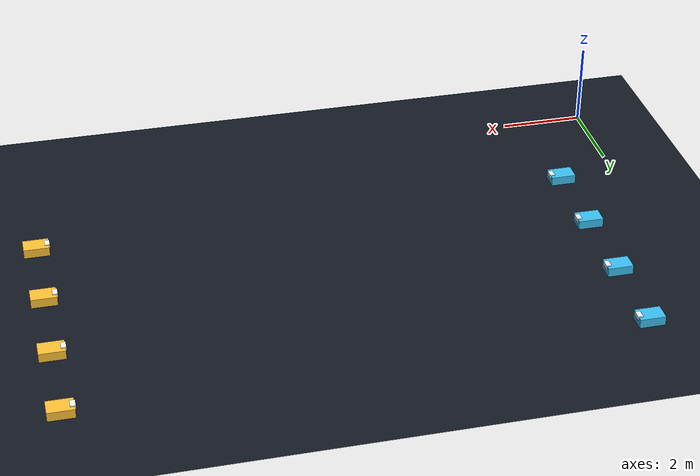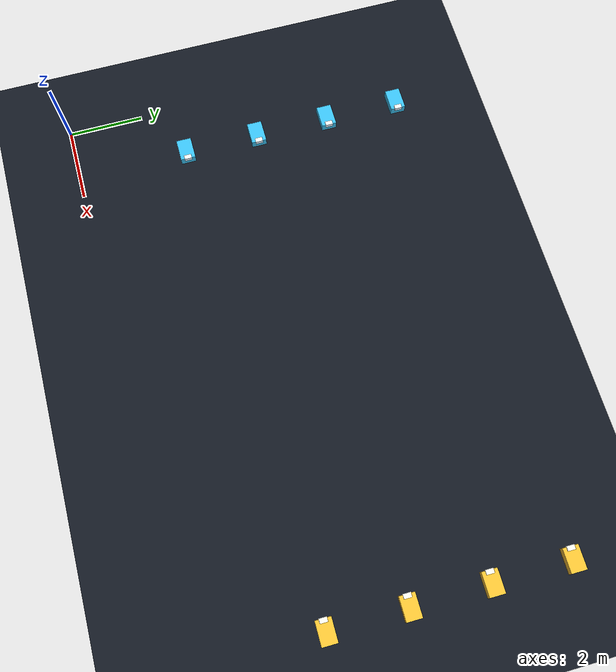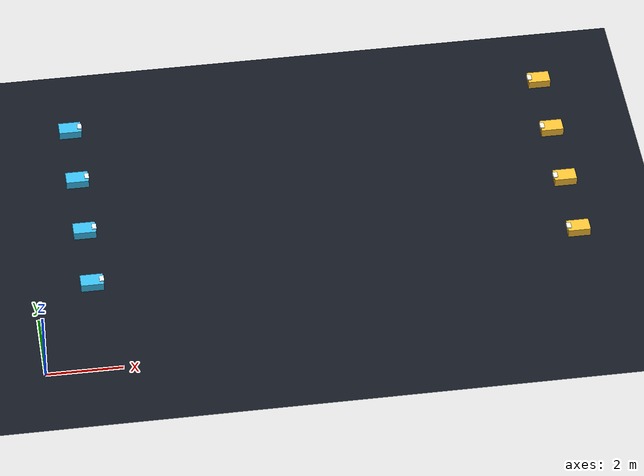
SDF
<?xml version="1.0" ?>
<sdf version="1.8">
  <world name="orca_demo">
    <physics name="1ms" type="ignored"><max_step_size>0.001</max_step_size><real_time_factor>1.0</real_time_factor></physics>
    <plugin filename="gz-sim-physics-system" name="gz::sim::systems::Physics"/>
    <plugin filename="gz-sim-user-commands-system" name="gz::sim::systems::UserCommands"/>
    <plugin filename="gz-sim-scene-broadcaster-system" name="gz::sim::systems::SceneBroadcaster"/>
    <plugin filename="gz-sim-sensors-system" name="gz::sim::systems::Sensors"><render_engine>ogre2</render_engine><background_color>0.043 0.055 0.078 1</background_color></plugin>

    <scene><ambient>0.5 0.5 0.55 1</ambient><background>0.043 0.055 0.078 1</background><grid>false</grid><shadows>true</shadows></scene>
    <light type="directional" name="sun"><cast_shadows>true</cast_shadows><pose>0 0 10 0 0 0</pose>
      <diffuse>0.9 0.9 0.9 1</diffuse><specular>0.25 0.25 0.25 1</specular><direction>-0.4 0.3 -0.9</direction></light>

    <model name="ground_plane"><static>true</static><link name="link">
      <collision name="c"><geometry><plane><normal>0 0 1</normal><size>60 60</size></plane></geometry></collision>
      <visual name="v"><geometry><plane><normal>0 0 1</normal><size>60 60</size></plane></geometry>
        <material><ambient>0.05 0.07 0.10 1</ambient><diffuse>0.07 0.09 0.13 1</diffuse></material></visual>
    </link></model>

    <model name="r1">
      <pose>1.5 3.0 0.1 0 0 0.0</pose>
      <link name="base">
        <inertial><mass>2.0</mass><inertia><ixx>0.05</ixx><iyy>0.05</iyy><izz>0.08</izz><ixy>0</ixy><ixz>0</ixz><iyz>0</iyz></inertia></inertial>
        <collision name="c"><pose>0 0 0.12 0 0 0</pose><geometry><box><size>0.6 0.4 0.22</size></box></geometry></collision>
        <visual name="v"><pose>0 0 0.12 0 0 0</pose><geometry><box><size>0.6 0.4 0.22</size></box></geometry>
          <material><ambient>0.13 0.55 0.77 1</ambient><diffuse>0.22 0.74 0.93 1</diffuse><specular>0.3 0.3 0.3 1</specular></material></visual>
        <visual name="nose"><pose>0.26 0 0.2 0 0 0</pose><geometry><box><size>0.12 0.2 0.1</size></box></geometry>
          <material><ambient>0.9 0.95 1 1</ambient><diffuse>0.9 0.95 1 1</diffuse></material></visual>
      </link>
      <plugin filename="gz-sim-velocity-control-system" name="gz::sim::systems::VelocityControl">
        <topic>/model/r1/cmd_vel</topic></plugin>
      <plugin filename="gz-sim-pose-publisher-system" name="gz::sim::systems::PosePublisher">
        <publish_link_pose>false</publish_link_pose><publish_model_pose>true</publish_model_pose>
        <use_pose_vector_msg>false</use_pose_vector_msg><static_publisher>false</static_publisher>
        <update_frequency>30</update_frequency></plugin>
    </model>
    <model name="r2">
      <pose>1.5 5.0 0.1 0 0 0.0</pose>
      <link name="base">
        <inertial><mass>2.0</mass><inertia><ixx>0.05</ixx><iyy>0.05</iyy><izz>0.08</izz><ixy>0</ixy><ixz>0</ixz><iyz>0</iyz></inertia></inertial>
        <collision name="c"><pose>0 0 0.12 0 0 0</pose><geometry><box><size>0.6 0.4 0.22</size></box></geometry></collision>
        <visual name="v"><pose>0 0 0.12 0 0 0</pose><geometry><box><size>0.6 0.4 0.22</size></box></geometry>
          <material><ambient>0.13 0.55 0.77 1</ambient><diffuse>0.22 0.74 0.93 1</diffuse><specular>0.3 0.3 0.3 1</specular></material></visual>
        <visual name="nose"><pose>0.26 0 0.2 0 0 0</pose><geometry><box><size>0.12 0.2 0.1</size></box></geometry>
          <material><ambient>0.9 0.95 1 1</ambient><diffuse>0.9 0.95 1 1</diffuse></material></visual>
      </link>
      <plugin filename="gz-sim-velocity-control-system" name="gz::sim::systems::VelocityControl">
        <topic>/model/r2/cmd_vel</topic></plugin>
      <plugin filename="gz-sim-pose-publisher-system" name="gz::sim::systems::PosePublisher">
        <publish_link_pose>false</publish_link_pose><publish_model_pose>true</publish_model_pose>
        <use_pose_vector_msg>false</use_pose_vector_msg><static_publisher>false</static_publisher>
        <update_frequency>30</update_frequency></plugin>
    </model>
    <model name="r3">
      <pose>1.5 7.0 0.1 0 0 0.0</pose>
      <link name="base">
        <inertial><mass>2.0</mass><inertia><ixx>0.05</ixx><iyy>0.05</iyy><izz>0.08</izz><ixy>0</ixy><ixz>0</ixz><iyz>0</iyz></inertia></inertial>
        <collision name="c"><pose>0 0 0.12 0 0 0</pose><geometry><box><size>0.6 0.4 0.22</size></box></geometry></collision>
        <visual name="v"><pose>0 0 0.12 0 0 0</pose><geometry><box><size>0.6 0.4 0.22</size></box></geometry>
          <material><ambient>0.13 0.55 0.77 1</ambient><diffuse>0.22 0.74 0.93 1</diffuse><specular>0.3 0.3 0.3 1</specular></material></visual>
        <visual name="nose"><pose>0.26 0 0.2 0 0 0</pose><geometry><box><size>0.12 0.2 0.1</size></box></geometry>
          <material><ambient>0.9 0.95 1 1</ambient><diffuse>0.9 0.95 1 1</diffuse></material></visual>
      </link>
      <plugin filename="gz-sim-velocity-control-system" name="gz::sim::systems::VelocityControl">
        <topic>/model/r3/cmd_vel</topic></plugin>
      <plugin filename="gz-sim-pose-publisher-system" name="gz::sim::systems::PosePublisher">
        <publish_link_pose>false</publish_link_pose><publish_model_pose>true</publish_model_pose>
        <use_pose_vector_msg>false</use_pose_vector_msg><static_publisher>false</static_publisher>
        <update_frequency>30</update_frequency></plugin>
    </model>
    <model name="r4">
      <pose>1.5 9.0 0.1 0 0 0.0</pose>
      <link name="base">
        <inertial><mass>2.0</mass><inertia><ixx>0.05</ixx><iyy>0.05</iyy><izz>0.08</izz><ixy>0</ixy><ixz>0</ixz><iyz>0</iyz></inertia></inertial>
        <collision name="c"><pose>0 0 0.12 0 0 0</pose><geometry><box><size>0.6 0.4 0.22</size></box></geometry></collision>
        <visual name="v"><pose>0 0 0.12 0 0 0</pose><geometry><box><size>0.6 0.4 0.22</size></box></geometry>
          <material><ambient>0.13 0.55 0.77 1</ambient><diffuse>0.22 0.74 0.93 1</diffuse><specular>0.3 0.3 0.3 1</specular></material></visual>
        <visual name="nose"><pose>0.26 0 0.2 0 0 0</pose><geometry><box><size>0.12 0.2 0.1</size></box></geometry>
          <material><ambient>0.9 0.95 1 1</ambient><diffuse>0.9 0.95 1 1</diffuse></material></visual>
      </link>
      <plugin filename="gz-sim-velocity-control-system" name="gz::sim::systems::VelocityControl">
        <topic>/model/r4/cmd_vel</topic></plugin>
      <plugin filename="gz-sim-pose-publisher-system" name="gz::sim::systems::PosePublisher">
        <publish_link_pose>false</publish_link_pose><publish_model_pose>true</publish_model_pose>
        <use_pose_vector_msg>false</use_pose_vector_msg><static_publisher>false</static_publisher>
        <update_frequency>30</update_frequency></plugin>
    </model>
    <model name="l1">
      <pose>14.5 3.3 0.1 0 0 3.141592653589793</pose>
      <link name="base">
        <inertial><mass>2.0</mass><inertia><ixx>0.05</ixx><iyy>0.05</iyy><izz>0.08</izz><ixy>0</ixy><ixz>0</ixz><iyz>0</iyz></inertia></inertial>
        <collision name="c"><pose>0 0 0.12 0 0 0</pose><geometry><box><size>0.6 0.4 0.22</size></box></geometry></collision>
        <visual name="v"><pose>0 0 0.12 0 0 0</pose><geometry><box><size>0.6 0.4 0.22</size></box></geometry>
          <material><ambient>0.80 0.55 0.10 1</ambient><diffuse>0.98 0.75 0.20 1</diffuse><specular>0.3 0.3 0.3 1</specular></material></visual>
        <visual name="nose"><pose>0.26 0 0.2 0 0 0</pose><geometry><box><size>0.12 0.2 0.1</size></box></geometry>
          <material><ambient>1 0.97 0.9 1</ambient><diffuse>1 0.97 0.9 1</diffuse></material></visual>
      </link>
      <plugin filename="gz-sim-velocity-control-system" name="gz::sim::systems::VelocityControl">
        <topic>/model/l1/cmd_vel</topic></plugin>
      <plugin filename="gz-sim-pose-publisher-system" name="gz::sim::systems::PosePublisher">
        <publish_link_pose>false</publish_link_pose><publish_model_pose>true</publish_model_pose>
        <use_pose_vector_msg>false</use_pose_vector_msg><static_publisher>false</static_publisher>
        <update_frequency>30</update_frequency></plugin>
    </model>
    <model name="l2">
      <pose>14.5 5.3 0.1 0 0 3.141592653589793</pose>
      <link name="base">
        <inertial><mass>2.0</mass><inertia><ixx>0.05</ixx><iyy>0.05</iyy><izz>0.08</izz><ixy>0</ixy><ixz>0</ixz><iyz>0</iyz></inertia></inertial>
        <collision name="c"><pose>0 0 0.12 0 0 0</pose><geometry><box><size>0.6 0.4 0.22</size></box></geometry></collision>
        <visual name="v"><pose>0 0 0.12 0 0 0</pose><geometry><box><size>0.6 0.4 0.22</size></box></geometry>
          <material><ambient>0.80 0.55 0.10 1</ambient><diffuse>0.98 0.75 0.20 1</diffuse><specular>0.3 0.3 0.3 1</specular></material></visual>
        <visual name="nose"><pose>0.26 0 0.2 0 0 0</pose><geometry><box><size>0.12 0.2 0.1</size></box></geometry>
          <material><ambient>1 0.97 0.9 1</ambient><diffuse>1 0.97 0.9 1</diffuse></material></visual>
      </link>
      <plugin filename="gz-sim-velocity-control-system" name="gz::sim::systems::VelocityControl">
        <topic>/model/l2/cmd_vel</topic></plugin>
      <plugin filename="gz-sim-pose-publisher-system" name="gz::sim::systems::PosePublisher">
        <publish_link_pose>false</publish_link_pose><publish_model_pose>true</publish_model_pose>
        <use_pose_vector_msg>false</use_pose_vector_msg><static_publisher>false</static_publisher>
        <update_frequency>30</update_frequency></plugin>
    </model>
    <model name="l3">
      <pose>14.5 7.3 0.1 0 0 3.141592653589793</pose>
      <link name="base">
        <inertial><mass>2.0</mass><inertia><ixx>0.05</ixx><iyy>0.05</iyy><izz>0.08</izz><ixy>0</ixy><ixz>0</ixz><iyz>0</iyz></inertia></inertial>
        <collision name="c"><pose>0 0 0.12 0 0 0</pose><geometry><box><size>0.6 0.4 0.22</size></box></geometry></collision>
        <visual name="v"><pose>0 0 0.12 0 0 0</pose><geometry><box><size>0.6 0.4 0.22</size></box></geometry>
          <material><ambient>0.80 0.55 0.10 1</ambient><diffuse>0.98 0.75 0.20 1</diffuse><specular>0.3 0.3 0.3 1</specular></material></visual>
        <visual name="nose"><pose>0.26 0 0.2 0 0 0</pose><geometry><box><size>0.12 0.2 0.1</size></box></geometry>
          <material><ambient>1 0.97 0.9 1</ambient><diffuse>1 0.97 0.9 1</diffuse></material></visual>
      </link>
      <plugin filename="gz-sim-velocity-control-system" name="gz::sim::systems::VelocityControl">
        <topic>/model/l3/cmd_vel</topic></plugin>
      <plugin filename="gz-sim-pose-publisher-system" name="gz::sim::systems::PosePublisher">
        <publish_link_pose>false</publish_link_pose><publish_model_pose>true</publish_model_pose>
        <use_pose_vector_msg>false</use_pose_vector_msg><static_publisher>false</static_publisher>
        <update_frequency>30</update_frequency></plugin>
    </model>
    <model name="l4">
      <pose>14.5 9.3 0.1 0 0 3.141592653589793</pose>
      <link name="base">
        <inertial><mass>2.0</mass><inertia><ixx>0.05</ixx><iyy>0.05</iyy><izz>0.08</izz><ixy>0</ixy><ixz>0</ixz><iyz>0</iyz></inertia></inertial>
        <collision name="c"><pose>0 0 0.12 0 0 0</pose><geometry><box><size>0.6 0.4 0.22</size></box></geometry></collision>
        <visual name="v"><pose>0 0 0.12 0 0 0</pose><geometry><box><size>0.6 0.4 0.22</size></box></geometry>
          <material><ambient>0.80 0.55 0.10 1</ambient><diffuse>0.98 0.75 0.20 1</diffuse><specular>0.3 0.3 0.3 1</specular></material></visual>
        <visual name="nose"><pose>0.26 0 0.2 0 0 0</pose><geometry><box><size>0.12 0.2 0.1</size></box></geometry>
          <material><ambient>1 0.97 0.9 1</ambient><diffuse>1 0.97 0.9 1</diffuse></material></visual>
      </link>
      <plugin filename="gz-sim-velocity-control-system" name="gz::sim::systems::VelocityControl">
        <topic>/model/l4/cmd_vel</topic></plugin>
      <plugin filename="gz-sim-pose-publisher-system" name="gz::sim::systems::PosePublisher">
        <publish_link_pose>false</publish_link_pose><publish_model_pose>true</publish_model_pose>
        <use_pose_vector_msg>false</use_pose_vector_msg><static_publisher>false</static_publisher>
        <update_frequency>30</update_frequency></plugin>
    </model>

    <model name="rec_camera"><static>true</static><pose>8 -3.5 12.5 0 0.80 1.5707</pose>
      <link name="link"><sensor name="rec" type="camera">
        <camera><horizontal_fov>1.02</horizontal_fov><image><width>1000</width><height>640</height></image><clip><near>0.1</near><far>120</far></clip></camera>
        <always_on>1</always_on><update_rate>30</update_rate><topic>rec_camera</topic>
      </sensor></link>
    </model>
  </world>
</sdf>
